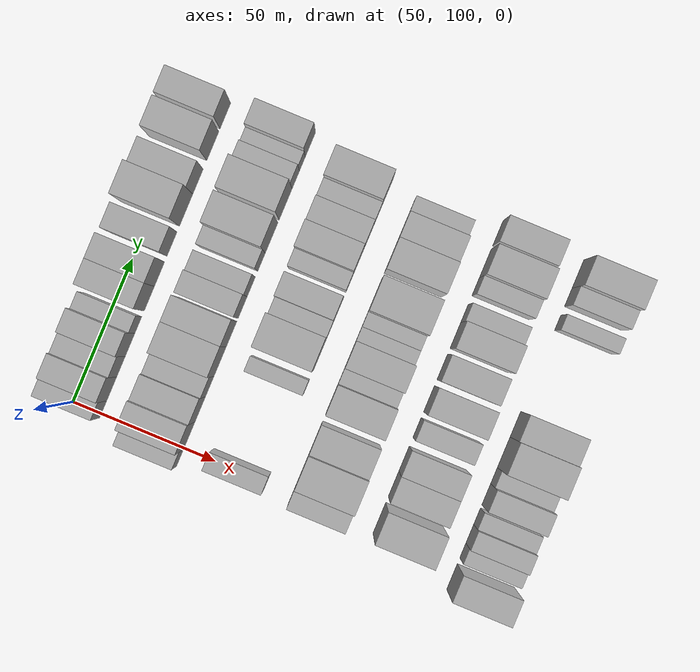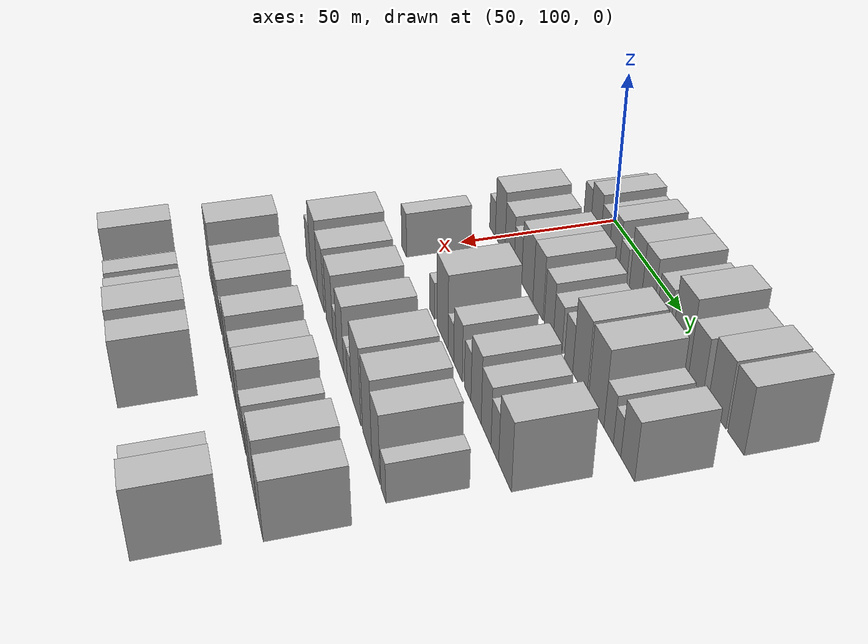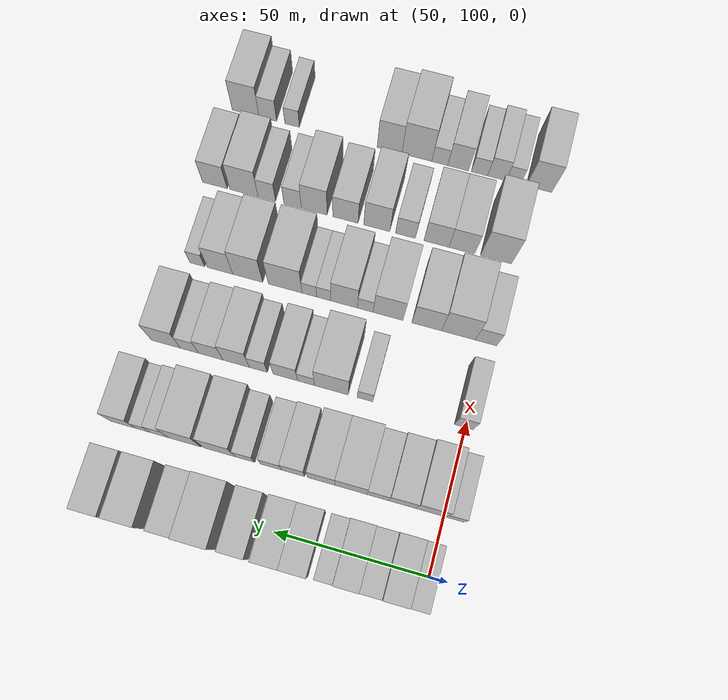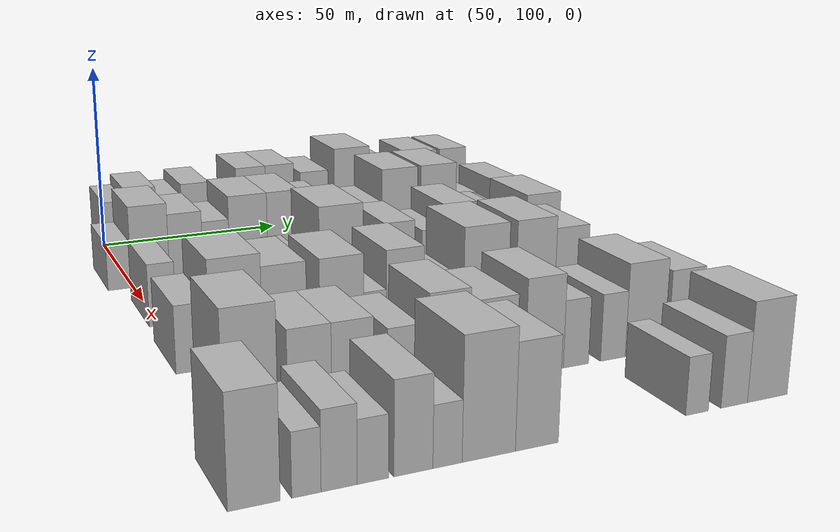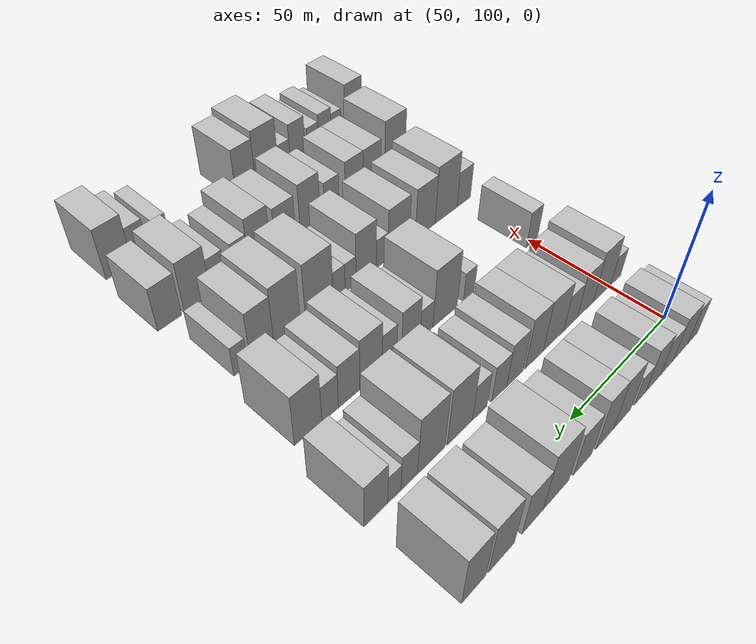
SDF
<sdf version="1.6">
 <world name="default">
  <model name="building_69">
   <static>1</static>
   <pose>50.0000 101.5394 0 0.000000 0.000000 0.000000</pose>
   <link name="link">
    <pose>0 0 7.50 0 0 0</pose>
    <collision name="collision"><geometry><box><size>20.0000 6.0355 15.0000</size></box></geometry></collision>
    <visual name="visual">
     <cast_shadows>0</cast_shadows>
     <geometry><box><size>20.0000 6.0355 15.0000</size></box></geometry>
     <material>
      <script>
       <uri>model://HANNAS_wall/materials/scripts</uri>
       <uri>model://HANNAS_wall/materials/textures</uri>
       <name>vrc/HANNAS_wall</name>
      </script>
     </material>
    </visual>
   </link>
  </model>
  <model name="building_70">
   <static>1</static>
   <pose>50.0000 108.7577 0 0.000000 0.000000 0.000000</pose>
   <link name="link">
    <pose>0 0 9.00 0 0 0</pose>
    <collision name="collision"><geometry><box><size>20.0000 8.4010 18.0000</size></box></geometry></collision>
    <visual name="visual">
     <cast_shadows>0</cast_shadows>
     <geometry><box><size>20.0000 8.4010 18.0000</size></box></geometry>
     <material>
      <script>
       <uri>model://HANNAS_wall/materials/scripts</uri>
       <uri>model://HANNAS_wall/materials/textures</uri>
       <name>vrc/HANNAS_wall</name>
      </script>
     </material>
    </visual>
   </link>
  </model>
  <model name="building_71">
   <static>1</static>
   <pose>50.0000 116.5142 0 0.000000 0.000000 0.000000</pose>
   <link name="link">
    <pose>0 0 7.50 0 0 0</pose>
    <collision name="collision"><geometry><box><size>20.0000 7.1120 15.0000</size></box></geometry></collision>
    <visual name="visual">
     <cast_shadows>0</cast_shadows>
     <geometry><box><size>20.0000 7.1120 15.0000</size></box></geometry>
     <material>
      <script>
       <uri>model://HANNAS_wall/materials/scripts</uri>
       <uri>model://HANNAS_wall/materials/textures</uri>
       <name>vrc/HANNAS_wall</name>
      </script>
     </material>
    </visual>
   </link>
  </model>
  <model name="building_72">
   <static>1</static>
   <pose>50.0000 124.1105 0 0.000000 0.000000 0.000000</pose>
   <link name="link">
    <pose>0 0 9.00 0 0 0</pose>
    <collision name="collision"><geometry><box><size>20.0000 8.0807 18.0000</size></box></geometry></collision>
    <visual name="visual">
     <cast_shadows>0</cast_shadows>
     <geometry><box><size>20.0000 8.0807 18.0000</size></box></geometry>
     <material>
      <script>
       <uri>model://HANNAS_wall/materials/scripts</uri>
       <uri>model://HANNAS_wall/materials/textures</uri>
       <name>vrc/HANNAS_wall</name>
      </script>
     </material>
    </visual>
   </link>
  </model>
  <model name="building_73">
   <static>1</static>
   <pose>50.0000 131.0758 0 0.000000 0.000000 0.000000</pose>
   <link name="link">
    <pose>0 0 6.00 0 0 0</pose>
    <collision name="collision"><geometry><box><size>20.0000 5.8499 12.0000</size></box></geometry></collision>
    <visual name="visual">
     <cast_shadows>0</cast_shadows>
     <geometry><box><size>20.0000 5.8499 12.0000</size></box></geometry>
     <material>
      <script>
       <uri>model://HANNAS_wall/materials/scripts</uri>
       <uri>model://HANNAS_wall/materials/textures</uri>
       <name>vrc/HANNAS_wall</name>
      </script>
     </material>
    </visual>
   </link>
  </model>
  <model name="building_74">
   <static>1</static>
   <pose>50.0000 140.3070 0 0.000000 0.000000 0.000000</pose>
   <link name="link">
    <pose>0 0 10.50 0 0 0</pose>
    <collision name="collision"><geometry><box><size>20.0000 8.6125 21.0000</size></box></geometry></collision>
    <visual name="visual">
     <cast_shadows>0</cast_shadows>
     <geometry><box><size>20.0000 8.6125 21.0000</size></box></geometry>
     <material>
      <script>
       <uri>model://HANNAS_wall/materials/scripts</uri>
       <uri>model://HANNAS_wall/materials/textures</uri>
       <name>vrc/HANNAS_wall</name>
      </script>
     </material>
    </visual>
   </link>
  </model>
  <model name="building_75">
   <static>1</static>
   <pose>50.0000 148.9057 0 0.000000 0.000000 0.000000</pose>
   <link name="link">
    <pose>0 0 10.50 0 0 0</pose>
    <collision name="collision"><geometry><box><size>20.0000 8.5850 21.0000</size></box></geometry></collision>
    <visual name="visual">
     <cast_shadows>0</cast_shadows>
     <geometry><box><size>20.0000 8.5850 21.0000</size></box></geometry>
     <material>
      <script>
       <uri>model://HANNAS_wall/materials/scripts</uri>
       <uri>model://HANNAS_wall/materials/textures</uri>
       <name>vrc/HANNAS_wall</name>
      </script>
     </material>
    </visual>
   </link>
  </model>
  <model name="building_76">
   <static>1</static>
   <pose>50.0000 159.4610 0 0.000000 0.000000 0.000000</pose>
   <link name="link">
    <pose>0 0 9.00 0 0 0</pose>
    <collision name="collision"><geometry><box><size>20.0000 8.5255 18.0000</size></box></geometry></collision>
    <visual name="visual">
     <cast_shadows>0</cast_shadows>
     <geometry><box><size>20.0000 8.5255 18.0000</size></box></geometry>
     <material>
      <script>
       <uri>model://HANNAS_wall/materials/scripts</uri>
       <uri>model://HANNAS_wall/materials/textures</uri>
       <name>vrc/HANNAS_wall</name>
      </script>
     </material>
    </visual>
   </link>
  </model>
  <model name="building_77">
   <static>1</static>
   <pose>50.0000 171.3109 0 0.000000 0.000000 0.000000</pose>
   <link name="link">
    <pose>0 0 12.00 0 0 0</pose>
    <collision name="collision"><geometry><box><size>20.0000 11.1744 24.0000</size></box></geometry></collision>
    <visual name="visual">
     <cast_shadows>0</cast_shadows>
     <geometry><box><size>20.0000 11.1744 24.0000</size></box></geometry>
     <material>
      <script>
       <uri>model://HANNAS_wall/materials/scripts</uri>
       <uri>model://HANNAS_wall/materials/textures</uri>
       <name>vrc/HANNAS_wall</name>
      </script>
     </material>
    </visual>
   </link>
  </model>
  <model name="building_78">
   <static>1</static>
   <pose>50.0000 181.3035 0 0.000000 0.000000 0.000000</pose>
   <link name="link">
    <pose>0 0 9.00 0 0 0</pose>
    <collision name="collision"><geometry><box><size>20.0000 8.8108 18.0000</size></box></geometry></collision>
    <visual name="visual">
     <cast_shadows>0</cast_shadows>
     <geometry><box><size>20.0000 8.8108 18.0000</size></box></geometry>
     <material>
      <script>
       <uri>model://HANNAS_wall/materials/scripts</uri>
       <uri>model://HANNAS_wall/materials/textures</uri>
       <name>vrc/HANNAS_wall</name>
      </script>
     </material>
    </visual>
   </link>
  </model>
  <model name="building_79">
   <static>1</static>
   <pose>50.0000 193.7866 0 0.000000 0.000000 0.000000</pose>
   <link name="link">
    <pose>0 0 10.50 0 0 0</pose>
    <collision name="collision"><geometry><box><size>20.0000 10.1554 21.0000</size></box></geometry></collision>
    <visual name="visual">
     <cast_shadows>0</cast_shadows>
     <geometry><box><size>20.0000 10.1554 21.0000</size></box></geometry>
     <material>
      <script>
       <uri>model://HANNAS_wall/materials/scripts</uri>
       <uri>model://HANNAS_wall/materials/textures</uri>
       <name>vrc/HANNAS_wall</name>
      </script>
     </material>
    </visual>
   </link>
  </model>
  <model name="building_80">
   <static>1</static>
   <pose>50.0000 204.3478 0 0.000000 0.000000 0.000000</pose>
   <link name="link">
    <pose>0 0 10.50 0 0 0</pose>
    <collision name="collision"><geometry><box><size>20.0000 8.9672 21.0000</size></box></geometry></collision>
    <visual name="visual">
     <cast_shadows>0</cast_shadows>
     <geometry><box><size>20.0000 8.9672 21.0000</size></box></geometry>
     <material>
      <script>
       <uri>model://HANNAS_wall/materials/scripts</uri>
       <uri>model://HANNAS_wall/materials/textures</uri>
       <name>vrc/HANNAS_wall</name>
      </script>
     </material>
    </visual>
   </link>
  </model>
  <model name="building_189">
   <static>1</static>
   <pose>79.0000 96.5428 0 0.000000 0.000000 0.000000</pose>
   <link name="link">
    <pose>0 0 6.00 0 0 0</pose>
    <collision name="collision"><geometry><box><size>20.0000 5.9302 12.0000</size></box></geometry></collision>
    <visual name="visual">
     <cast_shadows>0</cast_shadows>
     <geometry><box><size>20.0000 5.9302 12.0000</size></box></geometry>
     <material>
      <script>
       <uri>model://HANNAS_wall/materials/scripts</uri>
       <uri>model://HANNAS_wall/materials/textures</uri>
       <name>vrc/HANNAS_wall</name>
      </script>
     </material>
    </visual>
   </link>
  </model>
  <model name="building_190">
   <static>1</static>
   <pose>79.0000 104.3794 0 0.000000 0.000000 0.000000</pose>
   <link name="link">
    <pose>0 0 10.50 0 0 0</pose>
    <collision name="collision"><geometry><box><size>20.0000 9.7430 21.0000</size></box></geometry></collision>
    <visual name="visual">
     <cast_shadows>0</cast_shadows>
     <geometry><box><size>20.0000 9.7430 21.0000</size></box></geometry>
     <material>
      <script>
       <uri>model://HANNAS_wall/materials/scripts</uri>
       <uri>model://HANNAS_wall/materials/textures</uri>
       <name>vrc/HANNAS_wall</name>
      </script>
     </material>
    </visual>
   </link>
  </model>
  <model name="building_191">
   <static>1</static>
   <pose>79.0000 113.6623 0 0.000000 0.000000 0.000000</pose>
   <link name="link">
    <pose>0 0 9.00 0 0 0</pose>
    <collision name="collision"><geometry><box><size>20.0000 8.8227 18.0000</size></box></geometry></collision>
    <visual name="visual">
     <cast_shadows>0</cast_shadows>
     <geometry><box><size>20.0000 8.8227 18.0000</size></box></geometry>
     <material>
      <script>
       <uri>model://HANNAS_wall/materials/scripts</uri>
       <uri>model://HANNAS_wall/materials/textures</uri>
       <name>vrc/HANNAS_wall</name>
      </script>
     </material>
    </visual>
   </link>
  </model>
  <model name="building_192">
   <static>1</static>
   <pose>79.0000 121.6398 0 0.000000 0.000000 0.000000</pose>
   <link name="link">
    <pose>0 0 7.50 0 0 0</pose>
    <collision name="collision"><geometry><box><size>20.0000 7.1323 15.0000</size></box></geometry></collision>
    <visual name="visual">
     <cast_shadows>0</cast_shadows>
     <geometry><box><size>20.0000 7.1323 15.0000</size></box></geometry>
     <material>
      <script>
       <uri>model://HANNAS_wall/materials/scripts</uri>
       <uri>model://HANNAS_wall/materials/textures</uri>
       <name>vrc/HANNAS_wall</name>
      </script>
     </material>
    </visual>
   </link>
  </model>
  <model name="building_193">
   <static>1</static>
   <pose>79.0000 130.3961 0 0.000000 0.000000 0.000000</pose>
   <link name="link">
    <pose>0 0 10.50 0 0 0</pose>
    <collision name="collision"><geometry><box><size>20.0000 10.3803 21.0000</size></box></geometry></collision>
    <visual name="visual">
     <cast_shadows>0</cast_shadows>
     <geometry><box><size>20.0000 10.3803 21.0000</size></box></geometry>
     <material>
      <script>
       <uri>model://HANNAS_wall/materials/scripts</uri>
       <uri>model://HANNAS_wall/materials/textures</uri>
       <name>vrc/HANNAS_wall</name>
      </script>
     </material>
    </visual>
   </link>
  </model>
  <model name="building_194">
   <static>1</static>
   <pose>79.0000 140.0201 0 0.000000 0.000000 0.000000</pose>
   <link name="link">
    <pose>0 0 10.50 0 0 0</pose>
    <collision name="collision"><geometry><box><size>20.0000 8.8677 21.0000</size></box></geometry></collision>
    <visual name="visual">
     <cast_shadows>0</cast_shadows>
     <geometry><box><size>20.0000 8.8677 21.0000</size></box></geometry>
     <material>
      <script>
       <uri>model://HANNAS_wall/materials/scripts</uri>
       <uri>model://HANNAS_wall/materials/textures</uri>
       <name>vrc/HANNAS_wall</name>
      </script>
     </material>
    </visual>
   </link>
  </model>
  <model name="building_195">
   <static>1</static>
   <pose>79.0000 149.2645 0 0.000000 0.000000 0.000000</pose>
   <link name="link">
    <pose>0 0 9.00 0 0 0</pose>
    <collision name="collision"><geometry><box><size>20.0000 7.6212 18.0000</size></box></geometry></collision>
    <visual name="visual">
     <cast_shadows>0</cast_shadows>
     <geometry><box><size>20.0000 7.6212 18.0000</size></box></geometry>
     <material>
      <script>
       <uri>model://HANNAS_wall/materials/scripts</uri>
       <uri>model://HANNAS_wall/materials/textures</uri>
       <name>vrc/HANNAS_wall</name>
      </script>
     </material>
    </visual>
   </link>
  </model>
  <model name="building_196">
   <static>1</static>
   <pose>79.0000 156.5343 0 0.000000 0.000000 0.000000</pose>
   <link name="link">
    <pose>0 0 7.50 0 0 0</pose>
    <collision name="collision"><geometry><box><size>20.0000 6.9183 15.0000</size></box></geometry></collision>
    <visual name="visual">
     <cast_shadows>0</cast_shadows>
     <geometry><box><size>20.0000 6.9183 15.0000</size></box></geometry>
     <material>
      <script>
       <uri>model://HANNAS_wall/materials/scripts</uri>
       <uri>model://HANNAS_wall/materials/textures</uri>
       <name>vrc/HANNAS_wall</name>
      </script>
     </material>
    </visual>
   </link>
  </model>
  <model name="building_197">
   <static>1</static>
   <pose>79.0000 165.1853 0 0.000000 0.000000 0.000000</pose>
   <link name="link">
    <pose>0 0 7.50 0 0 0</pose>
    <collision name="collision"><geometry><box><size>20.0000 6.3839 15.0000</size></box></geometry></collision>
    <visual name="visual">
     <cast_shadows>0</cast_shadows>
     <geometry><box><size>20.0000 6.3839 15.0000</size></box></geometry>
     <material>
      <script>
       <uri>model://HANNAS_wall/materials/scripts</uri>
       <uri>model://HANNAS_wall/materials/textures</uri>
       <name>vrc/HANNAS_wall</name>
      </script>
     </material>
    </visual>
   </link>
  </model>
  <model name="building_198">
   <static>1</static>
   <pose>79.0000 173.6574 0 0.000000 0.000000 0.000000</pose>
   <link name="link">
    <pose>0 0 12.00 0 0 0</pose>
    <collision name="collision"><geometry><box><size>20.0000 10.5603 24.0000</size></box></geometry></collision>
    <visual name="visual">
     <cast_shadows>0</cast_shadows>
     <geometry><box><size>20.0000 10.5603 24.0000</size></box></geometry>
     <material>
      <script>
       <uri>model://HANNAS_wall/materials/scripts</uri>
       <uri>model://HANNAS_wall/materials/textures</uri>
       <name>vrc/HANNAS_wall</name>
      </script>
     </material>
    </visual>
   </link>
  </model>
  <model name="building_199">
   <static>1</static>
   <pose>79.0000 185.3671 0 0.000000 0.000000 0.000000</pose>
   <link name="link">
    <pose>0 0 12.00 0 0 0</pose>
    <collision name="collision"><geometry><box><size>20.0000 10.8590 24.0000</size></box></geometry></collision>
    <visual name="visual">
     <cast_shadows>0</cast_shadows>
     <geometry><box><size>20.0000 10.8590 24.0000</size></box></geometry>
     <material>
      <script>
       <uri>model://HANNAS_wall/materials/scripts</uri>
       <uri>model://HANNAS_wall/materials/textures</uri>
       <name>vrc/HANNAS_wall</name>
      </script>
     </material>
    </visual>
   </link>
  </model>
  <model name="building_200">
   <static>1</static>
   <pose>79.0000 193.9413 0 0.000000 0.000000 0.000000</pose>
   <link name="link">
    <pose>0 0 7.50 0 0 0</pose>
    <collision name="collision"><geometry><box><size>20.0000 6.2896 15.0000</size></box></geometry></collision>
    <visual name="visual">
     <cast_shadows>0</cast_shadows>
     <geometry><box><size>20.0000 6.2896 15.0000</size></box></geometry>
     <material>
      <script>
       <uri>model://HANNAS_wall/materials/scripts</uri>
       <uri>model://HANNAS_wall/materials/textures</uri>
       <name>vrc/HANNAS_wall</name>
      </script>
     </material>
    </visual>
   </link>
  </model>
  <model name="building_201">
   <static>1</static>
   <pose>79.0000 199.5329 0 0.000000 0.000000 0.000000</pose>
   <link name="link">
    <pose>0 0 6.00 0 0 0</pose>
    <collision name="collision"><geometry><box><size>20.0000 4.8935 12.0000</size></box></geometry></collision>
    <visual name="visual">
     <cast_shadows>0</cast_shadows>
     <geometry><box><size>20.0000 4.8935 12.0000</size></box></geometry>
     <material>
      <script>
       <uri>model://HANNAS_wall/materials/scripts</uri>
       <uri>model://HANNAS_wall/materials/textures</uri>
       <name>vrc/HANNAS_wall</name>
      </script>
     </material>
    </visual>
   </link>
  </model>
  <model name="building_202">
   <static>1</static>
   <pose>79.0000 206.2714 0 0.000000 0.000000 0.000000</pose>
   <link name="link">
    <pose>0 0 9.00 0 0 0</pose>
    <collision name="collision"><geometry><box><size>20.0000 8.5836 18.0000</size></box></geometry></collision>
    <visual name="visual">
     <cast_shadows>0</cast_shadows>
     <geometry><box><size>20.0000 8.5836 18.0000</size></box></geometry>
     <material>
      <script>
       <uri>model://HANNAS_wall/materials/scripts</uri>
       <uri>model://HANNAS_wall/materials/textures</uri>
       <name>vrc/HANNAS_wall</name>
      </script>
     </material>
    </visual>
   </link>
  </model>
  <model name="building_311">
   <static>1</static>
   <pose>108.0000 100.5710 0 0.000000 0.000000 0.000000</pose>
   <link name="link">
    <pose>0 0 7.50 0 0 0</pose>
    <collision name="collision"><geometry><box><size>20.0000 6.2438 15.0000</size></box></geometry></collision>
    <visual name="visual">
     <cast_shadows>0</cast_shadows>
     <geometry><box><size>20.0000 6.2438 15.0000</size></box></geometry>
     <material>
      <script>
       <uri>model://HANNAS_wall/materials/scripts</uri>
       <uri>model://HANNAS_wall/materials/textures</uri>
       <name>vrc/HANNAS_wall</name>
      </script>
     </material>
    </visual>
   </link>
  </model>
  <model name="building_312">
   <static>1</static>
   <pose>108.0000 133.6026 0 0.000000 0.000000 0.000000</pose>
   <link name="link">
    <pose>0 0 6.00 0 0 0</pose>
    <collision name="collision"><geometry><box><size>20.0000 5.2731 12.0000</size></box></geometry></collision>
    <visual name="visual">
     <cast_shadows>0</cast_shadows>
     <geometry><box><size>20.0000 5.2731 12.0000</size></box></geometry>
     <material>
      <script>
       <uri>model://HANNAS_wall/materials/scripts</uri>
       <uri>model://HANNAS_wall/materials/textures</uri>
       <name>vrc/HANNAS_wall</name>
      </script>
     </material>
    </visual>
   </link>
  </model>
  <model name="building_313">
   <static>1</static>
   <pose>108.0000 144.9411 0 0.000000 0.000000 0.000000</pose>
   <link name="link">
    <pose>0 0 12.00 0 0 0</pose>
    <collision name="collision"><geometry><box><size>20.0000 11.4038 24.0000</size></box></geometry></collision>
    <visual name="visual">
     <cast_shadows>0</cast_shadows>
     <geometry><box><size>20.0000 11.4038 24.0000</size></box></geometry>
     <material>
      <script>
       <uri>model://HANNAS_wall/materials/scripts</uri>
       <uri>model://HANNAS_wall/materials/textures</uri>
       <name>vrc/HANNAS_wall</name>
      </script>
     </material>
    </visual>
   </link>
  </model>
  <model name="building_314">
   <static>1</static>
   <pose>108.0000 153.5231 0 0.000000 0.000000 0.000000</pose>
   <link name="link">
    <pose>0 0 6.00 0 0 0</pose>
    <collision name="collision"><geometry><box><size>20.0000 5.7602 12.0000</size></box></geometry></collision>
    <visual name="visual">
     <cast_shadows>0</cast_shadows>
     <geometry><box><size>20.0000 5.7602 12.0000</size></box></geometry>
     <material>
      <script>
       <uri>model://HANNAS_wall/materials/scripts</uri>
       <uri>model://HANNAS_wall/materials/textures</uri>
       <name>vrc/HANNAS_wall</name>
      </script>
     </material>
    </visual>
   </link>
  </model>
  <model name="building_315">
   <static>1</static>
   <pose>108.0000 160.5238 0 0.000000 0.000000 0.000000</pose>
   <link name="link">
    <pose>0 0 9.00 0 0 0</pose>
    <collision name="collision"><geometry><box><size>20.0000 8.2412 18.0000</size></box></geometry></collision>
    <visual name="visual">
     <cast_shadows>0</cast_shadows>
     <geometry><box><size>20.0000 8.2412 18.0000</size></box></geometry>
     <material>
      <script>
       <uri>model://HANNAS_wall/materials/scripts</uri>
       <uri>model://HANNAS_wall/materials/textures</uri>
       <name>vrc/HANNAS_wall</name>
      </script>
     </material>
    </visual>
   </link>
  </model>
  <model name="building_316">
   <static>1</static>
   <pose>108.0000 169.7018 0 0.000000 0.000000 0.000000</pose>
   <link name="link">
    <pose>0 0 7.50 0 0 0</pose>
    <collision name="collision"><geometry><box><size>20.0000 6.1149 15.0000</size></box></geometry></collision>
    <visual name="visual">
     <cast_shadows>0</cast_shadows>
     <geometry><box><size>20.0000 6.1149 15.0000</size></box></geometry>
     <material>
      <script>
       <uri>model://HANNAS_wall/materials/scripts</uri>
       <uri>model://HANNAS_wall/materials/textures</uri>
       <name>vrc/HANNAS_wall</name>
      </script>
     </material>
    </visual>
   </link>
  </model>
  <model name="building_317">
   <static>1</static>
   <pose>108.0000 177.2950 0 0.000000 0.000000 0.000000</pose>
   <link name="link">
    <pose>0 0 10.50 0 0 0</pose>
    <collision name="collision"><geometry><box><size>20.0000 9.0716 21.0000</size></box></geometry></collision>
    <visual name="visual">
     <cast_shadows>0</cast_shadows>
     <geometry><box><size>20.0000 9.0716 21.0000</size></box></geometry>
     <material>
      <script>
       <uri>model://HANNAS_wall/materials/scripts</uri>
       <uri>model://HANNAS_wall/materials/textures</uri>
       <name>vrc/HANNAS_wall</name>
      </script>
     </material>
    </visual>
   </link>
  </model>
  <model name="building_318">
   <static>1</static>
   <pose>108.0000 186.0154 0 0.000000 0.000000 0.000000</pose>
   <link name="link">
    <pose>0 0 9.00 0 0 0</pose>
    <collision name="collision"><geometry><box><size>20.0000 8.3693 18.0000</size></box></geometry></collision>
    <visual name="visual">
     <cast_shadows>0</cast_shadows>
     <geometry><box><size>20.0000 8.3693 18.0000</size></box></geometry>
     <material>
      <script>
       <uri>model://HANNAS_wall/materials/scripts</uri>
       <uri>model://HANNAS_wall/materials/textures</uri>
       <name>vrc/HANNAS_wall</name>
      </script>
     </material>
    </visual>
   </link>
  </model>
  <model name="building_319">
   <static>1</static>
   <pose>108.0000 193.3513 0 0.000000 0.000000 0.000000</pose>
   <link name="link">
    <pose>0 0 7.50 0 0 0</pose>
    <collision name="collision"><geometry><box><size>20.0000 6.3023 15.0000</size></box></geometry></collision>
    <visual name="visual">
     <cast_shadows>0</cast_shadows>
     <geometry><box><size>20.0000 6.3023 15.0000</size></box></geometry>
     <material>
      <script>
       <uri>model://HANNAS_wall/materials/scripts</uri>
       <uri>model://HANNAS_wall/materials/textures</uri>
       <name>vrc/HANNAS_wall</name>
      </script>
     </material>
    </visual>
   </link>
  </model>
  <model name="building_320">
   <static>1</static>
   <pose>108.0000 201.5294 0 0.000000 0.000000 0.000000</pose>
   <link name="link">
    <pose>0 0 10.50 0 0 0</pose>
    <collision name="collision"><geometry><box><size>20.0000 10.0539 21.0000</size></box></geometry></collision>
    <visual name="visual">
     <cast_shadows>0</cast_shadows>
     <geometry><box><size>20.0000 10.0539 21.0000</size></box></geometry>
     <material>
      <script>
       <uri>model://HANNAS_wall/materials/scripts</uri>
       <uri>model://HANNAS_wall/materials/textures</uri>
       <name>vrc/HANNAS_wall</name>
      </script>
     </material>
    </visual>
   </link>
  </model>
  <model name="building_423">
   <static>1</static>
   <pose>137.0000 100.0917 0 0.000000 0.000000 0.000000</pose>
   <link name="link">
    <pose>0 0 7.50 0 0 0</pose>
    <collision name="collision"><geometry><box><size>20.0000 7.3050 15.0000</size></box></geometry></collision>
    <visual name="visual">
     <cast_shadows>0</cast_shadows>
     <geometry><box><size>20.0000 7.3050 15.0000</size></box></geometry>
     <material>
      <script>
       <uri>model://HANNAS_wall/materials/scripts</uri>
       <uri>model://HANNAS_wall/materials/textures</uri>
       <name>vrc/HANNAS_wall</name>
      </script>
     </material>
    </visual>
   </link>
  </model>
  <model name="building_424">
   <static>1</static>
   <pose>137.0000 109.5208 0 0.000000 0.000000 0.000000</pose>
   <link name="link">
    <pose>0 0 12.00 0 0 0</pose>
    <collision name="collision"><geometry><box><size>20.0000 11.5533 24.0000</size></box></geometry></collision>
    <visual name="visual">
     <cast_shadows>0</cast_shadows>
     <geometry><box><size>20.0000 11.5533 24.0000</size></box></geometry>
     <material>
      <script>
       <uri>model://HANNAS_wall/materials/scripts</uri>
       <uri>model://HANNAS_wall/materials/textures</uri>
       <name>vrc/HANNAS_wall</name>
      </script>
     </material>
    </visual>
   </link>
  </model>
  <model name="building_425">
   <static>1</static>
   <pose>137.0000 120.3490 0 0.000000 0.000000 0.000000</pose>
   <link name="link">
    <pose>0 0 10.50 0 0 0</pose>
    <collision name="collision"><geometry><box><size>20.0000 10.1031 21.0000</size></box></geometry></collision>
    <visual name="visual">
     <cast_shadows>0</cast_shadows>
     <geometry><box><size>20.0000 10.1031 21.0000</size></box></geometry>
     <material>
      <script>
       <uri>model://HANNAS_wall/materials/scripts</uri>
       <uri>model://HANNAS_wall/materials/textures</uri>
       <name>vrc/HANNAS_wall</name>
      </script>
     </material>
    </visual>
   </link>
  </model>
  <model name="building_426">
   <static>1</static>
   <pose>137.0000 133.5472 0 0.000000 0.000000 0.000000</pose>
   <link name="link">
    <pose>0 0 10.50 0 0 0</pose>
    <collision name="collision"><geometry><box><size>20.0000 10.2933 21.0000</size></box></geometry></collision>
    <visual name="visual">
     <cast_shadows>0</cast_shadows>
     <geometry><box><size>20.0000 10.2933 21.0000</size></box></geometry>
     <material>
      <script>
       <uri>model://HANNAS_wall/materials/scripts</uri>
       <uri>model://HANNAS_wall/materials/textures</uri>
       <name>vrc/HANNAS_wall</name>
      </script>
     </material>
    </visual>
   </link>
  </model>
  <model name="building_427">
   <static>1</static>
   <pose>137.0000 141.4074 0 0.000000 0.000000 0.000000</pose>
   <link name="link">
    <pose>0 0 6.00 0 0 0</pose>
    <collision name="collision"><geometry><box><size>20.0000 5.4272 12.0000</size></box></geometry></collision>
    <visual name="visual">
     <cast_shadows>0</cast_shadows>
     <geometry><box><size>20.0000 5.4272 12.0000</size></box></geometry>
     <material>
      <script>
       <uri>model://HANNAS_wall/materials/scripts</uri>
       <uri>model://HANNAS_wall/materials/textures</uri>
       <name>vrc/HANNAS_wall</name>
      </script>
     </material>
    </visual>
   </link>
  </model>
  <model name="building_428">
   <static>1</static>
   <pose>137.0000 148.7243 0 0.000000 0.000000 0.000000</pose>
   <link name="link">
    <pose>0 0 10.50 0 0 0</pose>
    <collision name="collision"><geometry><box><size>20.0000 9.2065 21.0000</size></box></geometry></collision>
    <visual name="visual">
     <cast_shadows>0</cast_shadows>
     <geometry><box><size>20.0000 9.2065 21.0000</size></box></geometry>
     <material>
      <script>
       <uri>model://HANNAS_wall/materials/scripts</uri>
       <uri>model://HANNAS_wall/materials/textures</uri>
       <name>vrc/HANNAS_wall</name>
      </script>
     </material>
    </visual>
   </link>
  </model>
  <model name="building_429">
   <static>1</static>
   <pose>137.0000 155.7796 0 0.000000 0.000000 0.000000</pose>
   <link name="link">
    <pose>0 0 6.00 0 0 0</pose>
    <collision name="collision"><geometry><box><size>20.0000 4.9041 12.0000</size></box></geometry></collision>
    <visual name="visual">
     <cast_shadows>0</cast_shadows>
     <geometry><box><size>20.0000 4.9041 12.0000</size></box></geometry>
     <material>
      <script>
       <uri>model://HANNAS_wall/materials/scripts</uri>
       <uri>model://HANNAS_wall/materials/textures</uri>
       <name>vrc/HANNAS_wall</name>
      </script>
     </material>
    </visual>
   </link>
  </model>
  <model name="building_430">
   <static>1</static>
   <pose>137.0000 160.7899 0 0.000000 0.000000 0.000000</pose>
   <link name="link">
    <pose>0 0 6.00 0 0 0</pose>
    <collision name="collision"><geometry><box><size>20.0000 5.1166 12.0000</size></box></geometry></collision>
    <visual name="visual">
     <cast_shadows>0</cast_shadows>
     <geometry><box><size>20.0000 5.1166 12.0000</size></box></geometry>
     <material>
      <script>
       <uri>model://HANNAS_wall/materials/scripts</uri>
       <uri>model://HANNAS_wall/materials/textures</uri>
       <name>vrc/HANNAS_wall</name>
      </script>
     </material>
    </visual>
   </link>
  </model>
  <model name="building_431">
   <static>1</static>
   <pose>137.0000 169.1997 0 0.000000 0.000000 0.000000</pose>
   <link name="link">
    <pose>0 0 12.00 0 0 0</pose>
    <collision name="collision"><geometry><box><size>20.0000 11.7030 24.0000</size></box></geometry></collision>
    <visual name="visual">
     <cast_shadows>0</cast_shadows>
     <geometry><box><size>20.0000 11.7030 24.0000</size></box></geometry>
     <material>
      <script>
       <uri>model://HANNAS_wall/materials/scripts</uri>
       <uri>model://HANNAS_wall/materials/textures</uri>
       <name>vrc/HANNAS_wall</name>
      </script>
     </material>
    </visual>
   </link>
  </model>
  <model name="building_432">
   <static>1</static>
   <pose>137.0000 182.3136 0 0.000000 0.000000 0.000000</pose>
   <link name="link">
    <pose>0 0 12.00 0 0 0</pose>
    <collision name="collision"><geometry><box><size>20.0000 10.5247 24.0000</size></box></geometry></collision>
    <visual name="visual">
     <cast_shadows>0</cast_shadows>
     <geometry><box><size>20.0000 10.5247 24.0000</size></box></geometry>
     <material>
      <script>
       <uri>model://HANNAS_wall/materials/scripts</uri>
       <uri>model://HANNAS_wall/materials/textures</uri>
       <name>vrc/HANNAS_wall</name>
      </script>
     </material>
    </visual>
   </link>
  </model>
  <model name="building_433">
   <static>1</static>
   <pose>137.0000 192.0517 0 0.000000 0.000000 0.000000</pose>
   <link name="link">
    <pose>0 0 10.50 0 0 0</pose>
    <collision name="collision"><geometry><box><size>20.0000 8.9515 21.0000</size></box></geometry></collision>
    <visual name="visual">
     <cast_shadows>0</cast_shadows>
     <geometry><box><size>20.0000 8.9515 21.0000</size></box></geometry>
     <material>
      <script>
       <uri>model://HANNAS_wall/materials/scripts</uri>
       <uri>model://HANNAS_wall/materials/textures</uri>
       <name>vrc/HANNAS_wall</name>
      </script>
     </material>
    </visual>
   </link>
  </model>
  <model name="building_434">
   <static>1</static>
   <pose>137.0000 200.1464 0 0.000000 0.000000 0.000000</pose>
   <link name="link">
    <pose>0 0 6.00 0 0 0</pose>
    <collision name="collision"><geometry><box><size>20.0000 5.2378 12.0000</size></box></geometry></collision>
    <visual name="visual">
     <cast_shadows>0</cast_shadows>
     <geometry><box><size>20.0000 5.2378 12.0000</size></box></geometry>
     <material>
      <script>
       <uri>model://HANNAS_wall/materials/scripts</uri>
       <uri>model://HANNAS_wall/materials/textures</uri>
       <name>vrc/HANNAS_wall</name>
      </script>
     </material>
    </visual>
   </link>
  </model>
  <model name="building_542">
   <static>1</static>
   <pose>166.0000 103.4969 0 0.000000 0.000000 0.000000</pose>
   <link name="link">
    <pose>0 0 12.00 0 0 0</pose>
    <collision name="collision"><geometry><box><size>20.0000 10.8336 24.0000</size></box></geometry></collision>
    <visual name="visual">
     <cast_shadows>0</cast_shadows>
     <geometry><box><size>20.0000 10.8336 24.0000</size></box></geometry>
     <material>
      <script>
       <uri>model://HANNAS_wall/materials/scripts</uri>
       <uri>model://HANNAS_wall/materials/textures</uri>
       <name>vrc/HANNAS_wall</name>
      </script>
     </material>
    </visual>
   </link>
  </model>
  <model name="building_543">
   <static>1</static>
   <pose>166.0000 115.3980 0 0.000000 0.000000 0.000000</pose>
   <link name="link">
    <pose>0 0 9.00 0 0 0</pose>
    <collision name="collision"><geometry><box><size>20.0000 8.9685 18.0000</size></box></geometry></collision>
    <visual name="visual">
     <cast_shadows>0</cast_shadows>
     <geometry><box><size>20.0000 8.9685 18.0000</size></box></geometry>
     <material>
      <script>
       <uri>model://HANNAS_wall/materials/scripts</uri>
       <uri>model://HANNAS_wall/materials/textures</uri>
       <name>vrc/HANNAS_wall</name>
      </script>
     </material>
    </visual>
   </link>
  </model>
  <model name="building_544">
   <static>1</static>
   <pose>166.0000 124.2624 0 0.000000 0.000000 0.000000</pose>
   <link name="link">
    <pose>0 0 9.00 0 0 0</pose>
    <collision name="collision"><geometry><box><size>20.0000 8.7603 18.0000</size></box></geometry></collision>
    <visual name="visual">
     <cast_shadows>0</cast_shadows>
     <geometry><box><size>20.0000 8.7603 18.0000</size></box></geometry>
     <material>
      <script>
       <uri>model://HANNAS_wall/materials/scripts</uri>
       <uri>model://HANNAS_wall/materials/textures</uri>
       <name>vrc/HANNAS_wall</name>
      </script>
     </material>
    </visual>
   </link>
  </model>
  <model name="building_545">
   <static>1</static>
   <pose>166.0000 135.1399 0 0.000000 0.000000 0.000000</pose>
   <link name="link">
    <pose>0 0 7.50 0 0 0</pose>
    <collision name="collision"><geometry><box><size>20.0000 6.9948 15.0000</size></box></geometry></collision>
    <visual name="visual">
     <cast_shadows>0</cast_shadows>
     <geometry><box><size>20.0000 6.9948 15.0000</size></box></geometry>
     <material>
      <script>
       <uri>model://HANNAS_wall/materials/scripts</uri>
       <uri>model://HANNAS_wall/materials/textures</uri>
       <name>vrc/HANNAS_wall</name>
      </script>
     </material>
    </visual>
   </link>
  </model>
  <model name="building_546">
   <static>1</static>
   <pose>166.0000 145.2451 0 0.000000 0.000000 0.000000</pose>
   <link name="link">
    <pose>0 0 10.50 0 0 0</pose>
    <collision name="collision"><geometry><box><size>20.0000 9.2155 21.0000</size></box></geometry></collision>
    <visual name="visual">
     <cast_shadows>0</cast_shadows>
     <geometry><box><size>20.0000 9.2155 21.0000</size></box></geometry>
     <material>
      <script>
       <uri>model://HANNAS_wall/materials/scripts</uri>
       <uri>model://HANNAS_wall/materials/textures</uri>
       <name>vrc/HANNAS_wall</name>
      </script>
     </material>
    </visual>
   </link>
  </model>
  <model name="building_547">
   <static>1</static>
   <pose>166.0000 156.3466 0 0.000000 0.000000 0.000000</pose>
   <link name="link">
    <pose>0 0 9.00 0 0 0</pose>
    <collision name="collision"><geometry><box><size>20.0000 8.9876 18.0000</size></box></geometry></collision>
    <visual name="visual">
     <cast_shadows>0</cast_shadows>
     <geometry><box><size>20.0000 8.9876 18.0000</size></box></geometry>
     <material>
      <script>
       <uri>model://HANNAS_wall/materials/scripts</uri>
       <uri>model://HANNAS_wall/materials/textures</uri>
       <name>vrc/HANNAS_wall</name>
      </script>
     </material>
    </visual>
   </link>
  </model>
  <model name="building_548">
   <static>1</static>
   <pose>166.0000 167.4403 0 0.000000 0.000000 0.000000</pose>
   <link name="link">
    <pose>0 0 10.50 0 0 0</pose>
    <collision name="collision"><geometry><box><size>20.0000 9.1998 21.0000</size></box></geometry></collision>
    <visual name="visual">
     <cast_shadows>0</cast_shadows>
     <geometry><box><size>20.0000 9.1998 21.0000</size></box></geometry>
     <material>
      <script>
       <uri>model://HANNAS_wall/materials/scripts</uri>
       <uri>model://HANNAS_wall/materials/textures</uri>
       <name>vrc/HANNAS_wall</name>
      </script>
     </material>
    </visual>
   </link>
  </model>
  <model name="building_549">
   <static>1</static>
   <pose>166.0000 175.1617 0 0.000000 0.000000 0.000000</pose>
   <link name="link">
    <pose>0 0 7.50 0 0 0</pose>
    <collision name="collision"><geometry><box><size>20.0000 6.2430 15.0000</size></box></geometry></collision>
    <visual name="visual">
     <cast_shadows>0</cast_shadows>
     <geometry><box><size>20.0000 6.2430 15.0000</size></box></geometry>
     <material>
      <script>
       <uri>model://HANNAS_wall/materials/scripts</uri>
       <uri>model://HANNAS_wall/materials/textures</uri>
       <name>vrc/HANNAS_wall</name>
      </script>
     </material>
    </visual>
   </link>
  </model>
  <model name="building_550">
   <static>1</static>
   <pose>166.0000 184.4314 0 0.000000 0.000000 0.000000</pose>
   <link name="link">
    <pose>0 0 7.50 0 0 0</pose>
    <collision name="collision"><geometry><box><size>20.0000 6.2965 15.0000</size></box></geometry></collision>
    <visual name="visual">
     <cast_shadows>0</cast_shadows>
     <geometry><box><size>20.0000 6.2965 15.0000</size></box></geometry>
     <material>
      <script>
       <uri>model://HANNAS_wall/materials/scripts</uri>
       <uri>model://HANNAS_wall/materials/textures</uri>
       <name>vrc/HANNAS_wall</name>
      </script>
     </material>
    </visual>
   </link>
  </model>
  <model name="building_551">
   <static>1</static>
   <pose>166.0000 192.6577 0 0.000000 0.000000 0.000000</pose>
   <link name="link">
    <pose>0 0 10.50 0 0 0</pose>
    <collision name="collision"><geometry><box><size>20.0000 10.1561 21.0000</size></box></geometry></collision>
    <visual name="visual">
     <cast_shadows>0</cast_shadows>
     <geometry><box><size>20.0000 10.1561 21.0000</size></box></geometry>
     <material>
      <script>
       <uri>model://HANNAS_wall/materials/scripts</uri>
       <uri>model://HANNAS_wall/materials/textures</uri>
       <name>vrc/HANNAS_wall</name>
      </script>
     </material>
    </visual>
   </link>
  </model>
  <model name="building_552">
   <static>1</static>
   <pose>166.0000 203.1740 0 0.000000 0.000000 0.000000</pose>
   <link name="link">
    <pose>0 0 9.00 0 0 0</pose>
    <collision name="collision"><geometry><box><size>20.0000 8.8765 18.0000</size></box></geometry></collision>
    <visual name="visual">
     <cast_shadows>0</cast_shadows>
     <geometry><box><size>20.0000 8.8765 18.0000</size></box></geometry>
     <material>
      <script>
       <uri>model://HANNAS_wall/materials/scripts</uri>
       <uri>model://HANNAS_wall/materials/textures</uri>
       <name>vrc/HANNAS_wall</name>
      </script>
     </material>
    </visual>
   </link>
  </model>
  <model name="building_651">
   <static>1</static>
   <pose>195.0000 94.9930 0 0.000000 0.000000 0.000000</pose>
   <link name="link">
    <pose>0 0 10.50 0 0 0</pose>
    <collision name="collision"><geometry><box><size>20.0000 9.0376 21.0000</size></box></geometry></collision>
    <visual name="visual">
     <cast_shadows>0</cast_shadows>
     <geometry><box><size>20.0000 9.0376 21.0000</size></box></geometry>
     <material>
      <script>
       <uri>model://HANNAS_wall/materials/scripts</uri>
       <uri>model://HANNAS_wall/materials/textures</uri>
       <name>vrc/HANNAS_wall</name>
      </script>
     </material>
    </visual>
   </link>
  </model>
  <model name="building_652">
   <static>1</static>
   <pose>195.0000 104.1080 0 0.000000 0.000000 0.000000</pose>
   <link name="link">
    <pose>0 0 6.00 0 0 0</pose>
    <collision name="collision"><geometry><box><size>20.0000 5.1926 12.0000</size></box></geometry></collision>
    <visual name="visual">
     <cast_shadows>0</cast_shadows>
     <geometry><box><size>20.0000 5.1926 12.0000</size></box></geometry>
     <material>
      <script>
       <uri>model://HANNAS_wall/materials/scripts</uri>
       <uri>model://HANNAS_wall/materials/textures</uri>
       <name>vrc/HANNAS_wall</name>
      </script>
     </material>
    </visual>
   </link>
  </model>
  <model name="building_653">
   <static>1</static>
   <pose>195.0000 109.9783 0 0.000000 0.000000 0.000000</pose>
   <link name="link">
    <pose>0 0 7.50 0 0 0</pose>
    <collision name="collision"><geometry><box><size>20.0000 6.5480 15.0000</size></box></geometry></collision>
    <visual name="visual">
     <cast_shadows>0</cast_shadows>
     <geometry><box><size>20.0000 6.5480 15.0000</size></box></geometry>
     <material>
      <script>
       <uri>model://HANNAS_wall/materials/scripts</uri>
       <uri>model://HANNAS_wall/materials/textures</uri>
       <name>vrc/HANNAS_wall</name>
      </script>
     </material>
    </visual>
   </link>
  </model>
  <model name="building_654">
   <static>1</static>
   <pose>195.0000 116.1528 0 0.000000 0.000000 0.000000</pose>
   <link name="link">
    <pose>0 0 6.00 0 0 0</pose>
    <collision name="collision"><geometry><box><size>20.0000 5.8010 12.0000</size></box></geometry></collision>
    <visual name="visual">
     <cast_shadows>0</cast_shadows>
     <geometry><box><size>20.0000 5.8010 12.0000</size></box></geometry>
     <material>
      <script>
       <uri>model://HANNAS_wall/materials/scripts</uri>
       <uri>model://HANNAS_wall/materials/textures</uri>
       <name>vrc/HANNAS_wall</name>
      </script>
     </material>
    </visual>
   </link>
  </model>
  <model name="building_655">
   <static>1</static>
   <pose>195.0000 123.7712 0 0.000000 0.000000 0.000000</pose>
   <link name="link">
    <pose>0 0 9.00 0 0 0</pose>
    <collision name="collision"><geometry><box><size>20.0000 7.4357 18.0000</size></box></geometry></collision>
    <visual name="visual">
     <cast_shadows>0</cast_shadows>
     <geometry><box><size>20.0000 7.4357 18.0000</size></box></geometry>
     <material>
      <script>
       <uri>model://HANNAS_wall/materials/scripts</uri>
       <uri>model://HANNAS_wall/materials/textures</uri>
       <name>vrc/HANNAS_wall</name>
      </script>
     </material>
    </visual>
   </link>
  </model>
  <model name="building_656">
   <static>1</static>
   <pose>195.0000 130.3444 0 0.000000 0.000000 0.000000</pose>
   <link name="link">
    <pose>0 0 6.00 0 0 0</pose>
    <collision name="collision"><geometry><box><size>20.0000 5.7107 12.0000</size></box></geometry></collision>
    <visual name="visual">
     <cast_shadows>0</cast_shadows>
     <geometry><box><size>20.0000 5.7107 12.0000</size></box></geometry>
     <material>
      <script>
       <uri>model://HANNAS_wall/materials/scripts</uri>
       <uri>model://HANNAS_wall/materials/textures</uri>
       <name>vrc/HANNAS_wall</name>
      </script>
     </material>
    </visual>
   </link>
  </model>
  <model name="building_657">
   <static>1</static>
   <pose>195.0000 138.5701 0 0.000000 0.000000 0.000000</pose>
   <link name="link">
    <pose>0 0 12.00 0 0 0</pose>
    <collision name="collision"><geometry><box><size>20.0000 10.7407 24.0000</size></box></geometry></collision>
    <visual name="visual">
     <cast_shadows>0</cast_shadows>
     <geometry><box><size>20.0000 10.7407 24.0000</size></box></geometry>
     <material>
      <script>
       <uri>model://HANNAS_wall/materials/scripts</uri>
       <uri>model://HANNAS_wall/materials/textures</uri>
       <name>vrc/HANNAS_wall</name>
      </script>
     </material>
    </visual>
   </link>
  </model>
  <model name="building_658">
   <static>1</static>
   <pose>195.0000 148.4119 0 0.000000 0.000000 0.000000</pose>
   <link name="link">
    <pose>0 0 10.50 0 0 0</pose>
    <collision name="collision"><geometry><box><size>20.0000 8.9430 21.0000</size></box></geometry></collision>
    <visual name="visual">
     <cast_shadows>0</cast_shadows>
     <geometry><box><size>20.0000 8.9430 21.0000</size></box></geometry>
     <material>
      <script>
       <uri>model://HANNAS_wall/materials/scripts</uri>
       <uri>model://HANNAS_wall/materials/textures</uri>
       <name>vrc/HANNAS_wall</name>
      </script>
     </material>
    </visual>
   </link>
  </model>
  <model name="building_659">
   <static>1</static>
   <pose>195.0000 183.9312 0 0.000000 0.000000 0.000000</pose>
   <link name="link">
    <pose>0 0 6.00 0 0 0</pose>
    <collision name="collision"><geometry><box><size>20.0000 5.3652 12.0000</size></box></geometry></collision>
    <visual name="visual">
     <cast_shadows>0</cast_shadows>
     <geometry><box><size>20.0000 5.3652 12.0000</size></box></geometry>
     <material>
      <script>
       <uri>model://HANNAS_wall/materials/scripts</uri>
       <uri>model://HANNAS_wall/materials/textures</uri>
       <name>vrc/HANNAS_wall</name>
      </script>
     </material>
    </visual>
   </link>
  </model>
  <model name="building_660">
   <static>1</static>
   <pose>195.0000 192.8445 0 0.000000 0.000000 0.000000</pose>
   <link name="link">
    <pose>0 0 7.50 0 0 0</pose>
    <collision name="collision"><geometry><box><size>20.0000 6.4613 15.0000</size></box></geometry></collision>
    <visual name="visual">
     <cast_shadows>0</cast_shadows>
     <geometry><box><size>20.0000 6.4613 15.0000</size></box></geometry>
     <material>
      <script>
       <uri>model://HANNAS_wall/materials/scripts</uri>
       <uri>model://HANNAS_wall/materials/textures</uri>
       <name>vrc/HANNAS_wall</name>
      </script>
     </material>
    </visual>
   </link>
  </model>
  <model name="building_661">
   <static>1</static>
   <pose>195.0000 201.0223 0 0.000000 0.000000 0.000000</pose>
   <link name="link">
    <pose>0 0 10.50 0 0 0</pose>
    <collision name="collision"><geometry><box><size>20.0000 9.8943 21.0000</size></box></geometry></collision>
    <visual name="visual">
     <cast_shadows>0</cast_shadows>
     <geometry><box><size>20.0000 9.8943 21.0000</size></box></geometry>
     <material>
      <script>
       <uri>model://HANNAS_wall/materials/scripts</uri>
       <uri>model://HANNAS_wall/materials/textures</uri>
       <name>vrc/HANNAS_wall</name>
      </script>
     </material>
    </visual>
   </link>
  </model>
 </world>
</sdf>
